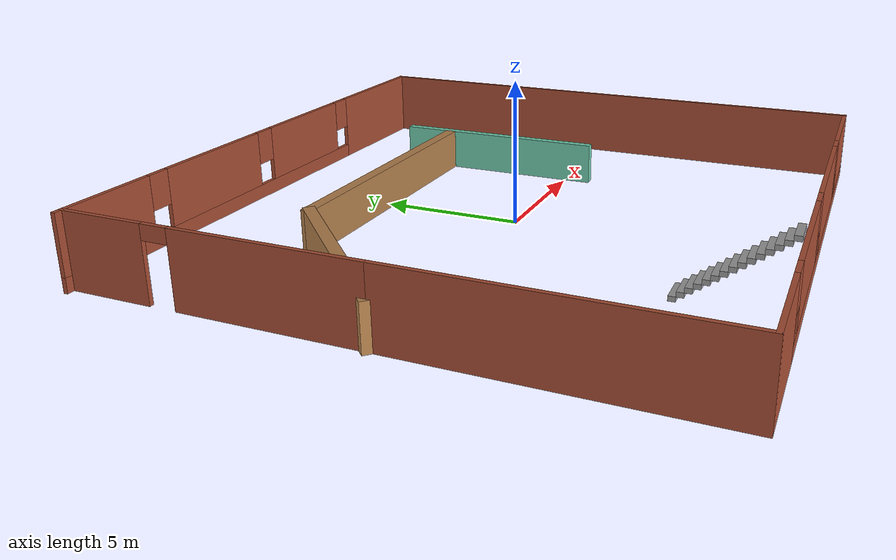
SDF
<?xml version='1.0'?>
<sdf version='1.6'>
  <model name='my_house'>
    <pose frame=''>-0.199999 -0.075 0 0 -0 0</pose>
    <link name='Stairs_1'>
      <visual name='Stairs_1_Visual_0'>
        <pose frame=''>-3.52265 -6.42087 0.083333 0 -0 0</pose>
        <geometry>
          <box>
            <size>1 0.233333 0.166667</size>
          </box>
        </geometry>
        <material>
          <script>
            <uri>file://media/materials/scripts/gazebo.material</uri>
            <name>Gazebo/Grey</name>
          </script>
          <ambient>1 1 1 1</ambient>
        </material>
        <meta>
          <layer>0</layer>
        </meta>
      </visual>
      <collision name='Stairs_1_Collision_0'>
        <geometry>
          <box>
            <size>1 0.233333 0.166667</size>
          </box>
        </geometry>
        <pose frame=''>-3.52265 -6.42087 0.083333 0 -0 0</pose>
      </collision>
      <visual name='Stairs_1_Visual_1'>
        <pose frame=''>-3.52265 -6.6542 0.25 0 -0 0</pose>
        <geometry>
          <box>
            <size>1 0.233333 0.166667</size>
          </box>
        </geometry>
        <material>
          <script>
            <uri>file://media/materials/scripts/gazebo.material</uri>
            <name>Gazebo/Grey</name>
          </script>
          <ambient>1 1 1 1</ambient>
        </material>
        <meta>
          <layer>0</layer>
        </meta>
      </visual>
      <collision name='Stairs_1_Collision_1'>
        <geometry>
          <box>
            <size>1 0.233333 0.166667</size>
          </box>
        </geometry>
        <pose frame=''>-3.52265 -6.6542 0.25 0 -0 0</pose>
      </collision>
      <visual name='Stairs_1_Visual_2'>
        <pose frame=''>-3.52265 -6.88753 0.416667 0 -0 0</pose>
        <geometry>
          <box>
            <size>1 0.233333 0.166667</size>
          </box>
        </geometry>
        <material>
          <script>
            <uri>file://media/materials/scripts/gazebo.material</uri>
            <name>Gazebo/Grey</name>
          </script>
          <ambient>1 1 1 1</ambient>
        </material>
        <meta>
          <layer>0</layer>
        </meta>
      </visual>
      <collision name='Stairs_1_Collision_2'>
        <geometry>
          <box>
            <size>1 0.233333 0.166667</size>
          </box>
        </geometry>
        <pose frame=''>-3.52265 -6.88753 0.416667 0 -0 0</pose>
      </collision>
      <visual name='Stairs_1_Visual_3'>
        <pose frame=''>-3.52265 -7.12087 0.583333 0 -0 0</pose>
        <geometry>
          <box>
            <size>1 0.233333 0.166667</size>
          </box>
        </geometry>
        <material>
          <script>
            <uri>file://media/materials/scripts/gazebo.material</uri>
            <name>Gazebo/Grey</name>
          </script>
          <ambient>1 1 1 1</ambient>
        </material>
        <meta>
          <layer>0</layer>
        </meta>
      </visual>
      <collision name='Stairs_1_Collision_3'>
        <geometry>
          <box>
            <size>1 0.233333 0.166667</size>
          </box>
        </geometry>
        <pose frame=''>-3.52265 -7.12087 0.583333 0 -0 0</pose>
      </collision>
      <visual name='Stairs_1_Visual_4'>
        <pose frame=''>-3.52265 -7.3542 0.75 0 -0 0</pose>
        <geometry>
          <box>
            <size>1 0.233333 0.166667</size>
          </box>
        </geometry>
        <material>
          <script>
            <uri>file://media/materials/scripts/gazebo.material</uri>
            <name>Gazebo/Grey</name>
          </script>
          <ambient>1 1 1 1</ambient>
        </material>
        <meta>
          <layer>0</layer>
        </meta>
      </visual>
      <collision name='Stairs_1_Collision_4'>
        <geometry>
          <box>
            <size>1 0.233333 0.166667</size>
          </box>
        </geometry>
        <pose frame=''>-3.52265 -7.3542 0.75 0 -0 0</pose>
      </collision>
      <visual name='Stairs_1_Visual_5'>
        <pose frame=''>-3.52265 -7.58753 0.916667 0 -0 0</pose>
        <geometry>
          <box>
            <size>1 0.233333 0.166667</size>
          </box>
        </geometry>
        <material>
          <script>
            <uri>file://media/materials/scripts/gazebo.material</uri>
            <name>Gazebo/Grey</name>
          </script>
          <ambient>1 1 1 1</ambient>
        </material>
        <meta>
          <layer>0</layer>
        </meta>
      </visual>
      <collision name='Stairs_1_Collision_5'>
        <geometry>
          <box>
            <size>1 0.233333 0.166667</size>
          </box>
        </geometry>
        <pose frame=''>-3.52265 -7.58753 0.916667 0 -0 0</pose>
      </collision>
      <visual name='Stairs_1_Visual_6'>
        <pose frame=''>-3.52265 -7.82087 1.08333 0 -0 0</pose>
        <geometry>
          <box>
            <size>1 0.233333 0.166667</size>
          </box>
        </geometry>
        <material>
          <script>
            <uri>file://media/materials/scripts/gazebo.material</uri>
            <name>Gazebo/Grey</name>
          </script>
          <ambient>1 1 1 1</ambient>
        </material>
        <meta>
          <layer>0</layer>
        </meta>
      </visual>
      <collision name='Stairs_1_Collision_6'>
        <geometry>
          <box>
            <size>1 0.233333 0.166667</size>
          </box>
        </geometry>
        <pose frame=''>-3.52265 -7.82087 1.08333 0 -0 0</pose>
      </collision>
      <visual name='Stairs_1_Visual_7'>
        <pose frame=''>-3.52265 -8.0542 1.25 0 -0 0</pose>
        <geometry>
          <box>
            <size>1 0.233333 0.166667</size>
          </box>
        </geometry>
        <material>
          <script>
            <uri>file://media/materials/scripts/gazebo.material</uri>
            <name>Gazebo/Grey</name>
          </script>
          <ambient>1 1 1 1</ambient>
        </material>
        <meta>
          <layer>0</layer>
        </meta>
      </visual>
      <collision name='Stairs_1_Collision_7'>
        <geometry>
          <box>
            <size>1 0.233333 0.166667</size>
          </box>
        </geometry>
        <pose frame=''>-3.52265 -8.0542 1.25 0 -0 0</pose>
      </collision>
      <visual name='Stairs_1_Visual_8'>
        <pose frame=''>-3.52265 -8.28753 1.41667 0 -0 0</pose>
        <geometry>
          <box>
            <size>1 0.233333 0.166667</size>
          </box>
        </geometry>
        <material>
          <script>
            <uri>file://media/materials/scripts/gazebo.material</uri>
            <name>Gazebo/Grey</name>
          </script>
          <ambient>1 1 1 1</ambient>
        </material>
        <meta>
          <layer>0</layer>
        </meta>
      </visual>
      <collision name='Stairs_1_Collision_8'>
        <geometry>
          <box>
            <size>1 0.233333 0.166667</size>
          </box>
        </geometry>
        <pose frame=''>-3.52265 -8.28753 1.41667 0 -0 0</pose>
      </collision>
      <visual name='Stairs_1_Visual_9'>
        <pose frame=''>-3.52265 -8.52087 1.58333 0 -0 0</pose>
        <geometry>
          <box>
            <size>1 0.233333 0.166667</size>
          </box>
        </geometry>
        <material>
          <script>
            <uri>file://media/materials/scripts/gazebo.material</uri>
            <name>Gazebo/Grey</name>
          </script>
          <ambient>1 1 1 1</ambient>
        </material>
        <meta>
          <layer>0</layer>
        </meta>
      </visual>
      <collision name='Stairs_1_Collision_9'>
        <geometry>
          <box>
            <size>1 0.233333 0.166667</size>
          </box>
        </geometry>
        <pose frame=''>-3.52265 -8.52087 1.58333 0 -0 0</pose>
      </collision>
      <visual name='Stairs_1_Visual_10'>
        <pose frame=''>-3.52265 -8.7542 1.75 0 -0 0</pose>
        <geometry>
          <box>
            <size>1 0.233333 0.166667</size>
          </box>
        </geometry>
        <material>
          <script>
            <uri>file://media/materials/scripts/gazebo.material</uri>
            <name>Gazebo/Grey</name>
          </script>
          <ambient>1 1 1 1</ambient>
        </material>
        <meta>
          <layer>0</layer>
        </meta>
      </visual>
      <collision name='Stairs_1_Collision_10'>
        <geometry>
          <box>
            <size>1 0.233333 0.166667</size>
          </box>
        </geometry>
        <pose frame=''>-3.52265 -8.7542 1.75 0 -0 0</pose>
      </collision>
      <visual name='Stairs_1_Visual_11'>
        <pose frame=''>-3.52265 -8.98753 1.91667 0 -0 0</pose>
        <geometry>
          <box>
            <size>1 0.233333 0.166667</size>
          </box>
        </geometry>
        <material>
          <script>
            <uri>file://media/materials/scripts/gazebo.material</uri>
            <name>Gazebo/Grey</name>
          </script>
          <ambient>1 1 1 1</ambient>
        </material>
        <meta>
          <layer>0</layer>
        </meta>
      </visual>
      <collision name='Stairs_1_Collision_11'>
        <geometry>
          <box>
            <size>1 0.233333 0.166667</size>
          </box>
        </geometry>
        <pose frame=''>-3.52265 -8.98753 1.91667 0 -0 0</pose>
      </collision>
      <visual name='Stairs_1_Visual_12'>
        <pose frame=''>-3.52265 -9.22086 2.08333 0 -0 0</pose>
        <geometry>
          <box>
            <size>1 0.233333 0.166667</size>
          </box>
        </geometry>
        <material>
          <script>
            <uri>file://media/materials/scripts/gazebo.material</uri>
            <name>Gazebo/Grey</name>
          </script>
          <ambient>1 1 1 1</ambient>
        </material>
        <meta>
          <layer>0</layer>
        </meta>
      </visual>
      <collision name='Stairs_1_Collision_12'>
        <geometry>
          <box>
            <size>1 0.233333 0.166667</size>
          </box>
        </geometry>
        <pose frame=''>-3.52265 -9.22086 2.08333 0 -0 0</pose>
      </collision>
      <visual name='Stairs_1_Visual_13'>
        <pose frame=''>-3.52265 -9.4542 2.25 0 -0 0</pose>
        <geometry>
          <box>
            <size>1 0.233333 0.166667</size>
          </box>
        </geometry>
        <material>
          <script>
            <uri>file://media/materials/scripts/gazebo.material</uri>
            <name>Gazebo/Grey</name>
          </script>
          <ambient>1 1 1 1</ambient>
        </material>
        <meta>
          <layer>0</layer>
        </meta>
      </visual>
      <collision name='Stairs_1_Collision_13'>
        <geometry>
          <box>
            <size>1 0.233333 0.166667</size>
          </box>
        </geometry>
        <pose frame=''>-3.52265 -9.4542 2.25 0 -0 0</pose>
      </collision>
      <visual name='Stairs_1_Visual_14'>
        <pose frame=''>-3.52265 -9.68753 2.41667 0 -0 0</pose>
        <geometry>
          <box>
            <size>1 0.233333 0.166667</size>
          </box>
        </geometry>
        <material>
          <script>
            <uri>file://media/materials/scripts/gazebo.material</uri>
            <name>Gazebo/Grey</name>
          </script>
          <ambient>1 1 1 1</ambient>
        </material>
        <meta>
          <layer>0</layer>
        </meta>
      </visual>
      <collision name='Stairs_1_Collision_14'>
        <geometry>
          <box>
            <size>1 0.233333 0.166667</size>
          </box>
        </geometry>
        <pose frame=''>-3.52265 -9.68753 2.41667 0 -0 0</pose>
      </collision>
    </link>
    <link name='Wall_14'>
      <collision name='Wall_14_Collision'>
        <geometry>
          <box>
            <size>20 0.15 2.5</size>
          </box>
        </geometry>
        <pose frame=''>0 0 1.25 0 -0 0</pose>
      </collision>
      <visual name='Wall_14_Visual'>
        <pose frame=''>0 0 1.25 0 -0 0</pose>
        <geometry>
          <box>
            <size>20 0.15 2.5</size>
          </box>
        </geometry>
        <material>
          <script>
            <uri>file://media/materials/scripts/gazebo.material</uri>
            <name>Gazebo/Bricks</name>
          </script>
          <ambient>1 1 1 1</ambient>
        </material>
        <meta>
          <layer>0</layer>
        </meta>
      </visual>
      <pose frame=''>10.05 0 0 0 -0 1.5708</pose>
    </link>
    <link name='Wall_15'>
      <pose frame=''>-1e-06 9.925 0 0 -0 3.14159</pose>
      <visual name='Wall_15_Visual_0'>
        <pose frame=''>-7.59411 0 1.25 0 -0 0</pose>
        <geometry>
          <box>
            <size>5.06177 0.15 2.5</size>
          </box>
        </geometry>
        <material>
          <script>
            <uri>file://media/materials/scripts/gazebo.material</uri>
            <name>Gazebo/Bricks</name>
          </script>
          <ambient>1 1 1 1</ambient>
        </material>
        <meta>
          <layer>0</layer>
        </meta>
      </visual>
      <collision name='Wall_15_Collision_0'>
        <geometry>
          <box>
            <size>5.06177 0.15 2.5</size>
          </box>
        </geometry>
        <pose frame=''>-7.59411 0 1.25 0 -0 0</pose>
      </collision>
      <visual name='Wall_15_Visual_1'>
        <pose frame=''>2.53089 0 0.25 0 -0 0</pose>
        <geometry>
          <box>
            <size>15.1882 0.15 0.5</size>
          </box>
        </geometry>
        <material>
          <script>
            <uri>file://media/materials/scripts/gazebo.material</uri>
            <name>Gazebo/Bricks</name>
          </script>
          <ambient>1 1 1 1</ambient>
        </material>
        <meta>
          <layer>0</layer>
        </meta>
      </visual>
      <collision name='Wall_15_Collision_1'>
        <geometry>
          <box>
            <size>15.1882 0.15 0.5</size>
          </box>
        </geometry>
        <pose frame=''>2.53089 0 0.25 0 -0 0</pose>
      </collision>
      <visual name='Wall_15_Visual_2'>
        <pose frame=''>-2.06836 0 1.5 0 -0 0</pose>
        <geometry>
          <box>
            <size>4.38974 0.15 2</size>
          </box>
        </geometry>
        <material>
          <script>
            <uri>file://media/materials/scripts/gazebo.material</uri>
            <name>Gazebo/Bricks</name>
          </script>
          <ambient>1 1 1 1</ambient>
        </material>
        <meta>
          <layer>0</layer>
        </meta>
      </visual>
      <collision name='Wall_15_Collision_2'>
        <geometry>
          <box>
            <size>4.38974 0.15 2</size>
          </box>
        </geometry>
        <pose frame=''>-2.06836 0 1.5 0 -0 0</pose>
      </collision>
      <visual name='Wall_15_Visual_3'>
        <pose frame=''>3.28189 0 1.5 0 -0 0</pose>
        <geometry>
          <box>
            <size>4.71076 0.15 2</size>
          </box>
        </geometry>
        <material>
          <script>
            <uri>file://media/materials/scripts/gazebo.material</uri>
            <name>Gazebo/Bricks</name>
          </script>
          <ambient>1 1 1 1</ambient>
        </material>
        <meta>
          <layer>0</layer>
        </meta>
      </visual>
      <collision name='Wall_15_Collision_3'>
        <geometry>
          <box>
            <size>4.71076 0.15 2</size>
          </box>
        </geometry>
        <pose frame=''>3.28189 0 1.5 0 -0 0</pose>
      </collision>
      <visual name='Wall_15_Visual_4'>
        <pose frame=''>8.28114 0 1.5 0 -0 0</pose>
        <geometry>
          <box>
            <size>3.68773 0.15 2</size>
          </box>
        </geometry>
        <material>
          <script>
            <uri>file://media/materials/scripts/gazebo.material</uri>
            <name>Gazebo/Bricks</name>
          </script>
          <ambient>1 1 1 1</ambient>
        </material>
        <meta>
          <layer>0</layer>
        </meta>
      </visual>
      <collision name='Wall_15_Collision_4'>
        <geometry>
          <box>
            <size>3.68773 0.15 2</size>
          </box>
        </geometry>
        <pose frame=''>8.28114 0 1.5 0 -0 0</pose>
      </collision>
      <visual name='Wall_15_Visual_5'>
        <pose frame=''>-4.66323 0 1.9 0 -0 0</pose>
        <geometry>
          <box>
            <size>0.8 0.15 1.2</size>
          </box>
        </geometry>
        <material>
          <script>
            <uri>file://media/materials/scripts/gazebo.material</uri>
            <name>Gazebo/Bricks</name>
          </script>
          <ambient>1 1 1 1</ambient>
        </material>
        <meta>
          <layer>0</layer>
        </meta>
      </visual>
      <collision name='Wall_15_Collision_5'>
        <geometry>
          <box>
            <size>0.8 0.15 1.2</size>
          </box>
        </geometry>
        <pose frame=''>-4.66323 0 1.9 0 -0 0</pose>
      </collision>
      <visual name='Wall_15_Visual_6'>
        <pose frame=''>0.526515 0 1.9 0 -0 0</pose>
        <geometry>
          <box>
            <size>0.8 0.15 1.2</size>
          </box>
        </geometry>
        <material>
          <script>
            <uri>file://media/materials/scripts/gazebo.material</uri>
            <name>Gazebo/Bricks</name>
          </script>
          <ambient>1 1 1 1</ambient>
        </material>
        <meta>
          <layer>0</layer>
        </meta>
      </visual>
      <collision name='Wall_15_Collision_6'>
        <geometry>
          <box>
            <size>0.8 0.15 1.2</size>
          </box>
        </geometry>
        <pose frame=''>0.526515 0 1.9 0 -0 0</pose>
      </collision>
      <visual name='Wall_15_Visual_7'>
        <pose frame=''>6.03727 0 1.9 0 -0 0</pose>
        <geometry>
          <box>
            <size>0.8 0.15 1.2</size>
          </box>
        </geometry>
        <material>
          <script>
            <uri>file://media/materials/scripts/gazebo.material</uri>
            <name>Gazebo/Bricks</name>
          </script>
          <ambient>1 1 1 1</ambient>
        </material>
        <meta>
          <layer>0</layer>
        </meta>
      </visual>
      <collision name='Wall_15_Collision_7'>
        <geometry>
          <box>
            <size>0.8 0.15 1.2</size>
          </box>
        </geometry>
        <pose frame=''>6.03727 0 1.9 0 -0 0</pose>
      </collision>
    </link>
    <link name='Wall_17'>
      <pose frame=''>-9.8 5 0 0 -0 1.5708</pose>
      <visual name='Wall_17_Visual_0'>
        <pose frame=''>-1.92226 0 1.25 0 -0 0</pose>
        <geometry>
          <box>
            <size>6.15549 0.15 2.5</size>
          </box>
        </geometry>
        <material>
          <script>
            <uri>file://media/materials/scripts/gazebo.material</uri>
            <name>Gazebo/Bricks</name>
          </script>
          <ambient>1 1 1 1</ambient>
        </material>
        <meta>
          <layer>0</layer>
        </meta>
      </visual>
      <collision name='Wall_17_Collision_0'>
        <geometry>
          <box>
            <size>6.15549 0.15 2.5</size>
          </box>
        </geometry>
        <pose frame=''>-1.92226 0 1.25 0 -0 0</pose>
      </collision>
      <visual name='Wall_17_Visual_1'>
        <pose frame=''>3.52774 0 1.25 0 -0 0</pose>
        <geometry>
          <box>
            <size>2.94451 0.15 2.5</size>
          </box>
        </geometry>
        <material>
          <script>
            <uri>file://media/materials/scripts/gazebo.material</uri>
            <name>Gazebo/Bricks</name>
          </script>
          <ambient>1 1 1 1</ambient>
        </material>
        <meta>
          <layer>0</layer>
        </meta>
      </visual>
      <collision name='Wall_17_Collision_1'>
        <geometry>
          <box>
            <size>2.94451 0.15 2.5</size>
          </box>
        </geometry>
        <pose frame=''>3.52774 0 1.25 0 -0 0</pose>
      </collision>
      <visual name='Wall_17_Visual_2'>
        <pose frame=''>1.60549 0 2.25 0 -0 0</pose>
        <geometry>
          <box>
            <size>0.9 0.15 0.5</size>
          </box>
        </geometry>
        <material>
          <script>
            <uri>file://media/materials/scripts/gazebo.material</uri>
            <name>Gazebo/Bricks</name>
          </script>
          <ambient>1 1 1 1</ambient>
        </material>
        <meta>
          <layer>0</layer>
        </meta>
      </visual>
      <collision name='Wall_17_Collision_2'>
        <geometry>
          <box>
            <size>0.9 0.15 0.5</size>
          </box>
        </geometry>
        <pose frame=''>1.60549 0 2.25 0 -0 0</pose>
      </collision>
    </link>
    <link name='Wall_21'>
      <collision name='Wall_21_Collision'>
        <geometry>
          <box>
            <size>7.9 0.3 1.5</size>
          </box>
        </geometry>
        <pose frame=''>0 0 0.75 0 -0 0</pose>
      </collision>
      <visual name='Wall_21_Visual'>
        <pose frame=''>0 0 0.75 0 -0 0</pose>
        <geometry>
          <box>
            <size>7.9 0.3 1.5</size>
          </box>
        </geometry>
        <material>
          <script>
            <uri>file://media/materials/scripts/gazebo.material</uri>
            <name>Gazebo/Grey</name>
          </script>
          <ambient>0.435294 0.796078 0.67451 1</ambient>
        </material>
        <meta>
          <layer>0</layer>
        </meta>
      </visual>
      <pose frame=''>5.522 3.051 0 0 0 -1.5708</pose>
    </link>
    <link name='Wall_3'>
      <collision name='Wall_3_Collision'>
        <geometry>
          <box>
            <size>10.4 0.4 1.5</size>
          </box>
        </geometry>
        <pose frame=''>0 0 0.75 0 -0 0</pose>
      </collision>
      <visual name='Wall_3_Visual'>
        <pose frame=''>0 0 0.75 0 -0 0</pose>
        <geometry>
          <box>
            <size>10.4 0.4 1.5</size>
          </box>
        </geometry>
        <material>
          <script>
            <uri>file://media/materials/scripts/gazebo.material</uri>
            <name>Gazebo/Wood</name>
          </script>
          <ambient>1 1 1 1</ambient>
        </material>
        <meta>
          <layer>0</layer>
        </meta>
      </visual>
      <pose frame=''>0.199999 5.075 0 0 -0 3.14159</pose>
    </link>
    <link name='Wall_5'>
      <collision name='Wall_5_Collision'>
        <geometry>
          <box>
            <size>7.47107 0.4 1.5</size>
          </box>
        </geometry>
        <pose frame=''>0 0 0.75 0 -0 0</pose>
      </collision>
      <visual name='Wall_5_Visual'>
        <pose frame=''>0 0 0.75 0 -0 0</pose>
        <geometry>
          <box>
            <size>7.47107 0.4 1.5</size>
          </box>
        </geometry>
        <material>
          <script>
            <uri>file://media/materials/scripts/gazebo.material</uri>
            <name>Gazebo/Wood</name>
          </script>
          <ambient>1 1 1 1</ambient>
        </material>
        <meta>
          <layer>0</layer>
        </meta>
      </visual>
      <pose frame=''>-7.3 2.575 0 0 0 -2.35619</pose>
    </link>
    <link name='Wall_7'>
      <collision name='Wall_7_Collision'>
        <geometry>
          <box>
            <size>10.15 0.15 2.5</size>
          </box>
        </geometry>
        <pose frame=''>0 0 1.25 0 -0 0</pose>
      </collision>
      <visual name='Wall_7_Visual'>
        <pose frame=''>0 0 1.25 0 -0 0</pose>
        <geometry>
          <box>
            <size>10.15 0.15 2.5</size>
          </box>
        </geometry>
        <material>
          <script>
            <uri>file://media/materials/scripts/gazebo.material</uri>
            <name>Gazebo/Bricks</name>
          </script>
          <ambient>1 1 1 1</ambient>
        </material>
        <meta>
          <layer>0</layer>
        </meta>
      </visual>
      <pose frame=''>-9.8 -4.925 0 0 0 -1.5708</pose>
    </link>
    <link name='Wall_9'>
      <pose frame=''>0.124999 -9.925 0 0 -0 0</pose>
      <visual name='Wall_9_Visual_0'>
        <pose frame=''>-8.30789 0 1.25 0 -0 0</pose>
        <geometry>
          <box>
            <size>3.38422 0.15 2.5</size>
          </box>
        </geometry>
        <material>
          <script>
            <uri>file://media/materials/scripts/gazebo.material</uri>
            <name>Gazebo/Bricks</name>
          </script>
          <ambient>1 1 1 1</ambient>
        </material>
        <meta>
          <layer>0</layer>
        </meta>
      </visual>
      <collision name='Wall_9_Collision_0'>
        <geometry>
          <box>
            <size>3.38422 0.15 2.5</size>
          </box>
        </geometry>
        <pose frame=''>-8.30789 0 1.25 0 -0 0</pose>
      </collision>
      <visual name='Wall_9_Visual_1'>
        <pose frame=''>1.69211 0 0.25 0 -0 0</pose>
        <geometry>
          <box>
            <size>16.6158 0.15 0.5</size>
          </box>
        </geometry>
        <material>
          <script>
            <uri>file://media/materials/scripts/gazebo.material</uri>
            <name>Gazebo/Bricks</name>
          </script>
          <ambient>1 1 1 1</ambient>
        </material>
        <meta>
          <layer>0</layer>
        </meta>
      </visual>
      <collision name='Wall_9_Collision_1'>
        <geometry>
          <box>
            <size>16.6158 0.15 0.5</size>
          </box>
        </geometry>
        <pose frame=''>1.69211 0 0.25 0 -0 0</pose>
      </collision>
      <visual name='Wall_9_Visual_2'>
        <pose frame=''>-3.43364 0 1.5 0 -0 0</pose>
        <geometry>
          <box>
            <size>4.76426 0.15 2</size>
          </box>
        </geometry>
        <material>
          <script>
            <uri>file://media/materials/scripts/gazebo.material</uri>
            <name>Gazebo/Bricks</name>
          </script>
          <ambient>1 1 1 1</ambient>
        </material>
        <meta>
          <layer>0</layer>
        </meta>
      </visual>
      <collision name='Wall_9_Collision_2'>
        <geometry>
          <box>
            <size>4.76426 0.15 2</size>
          </box>
        </geometry>
        <pose frame=''>-3.43364 0 1.5 0 -0 0</pose>
      </collision>
      <visual name='Wall_9_Visual_3'>
        <pose frame=''>2.45163 0 1.5 0 -0 0</pose>
        <geometry>
          <box>
            <size>5.40629 0.15 2</size>
          </box>
        </geometry>
        <material>
          <script>
            <uri>file://media/materials/scripts/gazebo.material</uri>
            <name>Gazebo/Bricks</name>
          </script>
          <ambient>1 1 1 1</ambient>
        </material>
        <meta>
          <layer>0</layer>
        </meta>
      </visual>
      <collision name='Wall_9_Collision_3'>
        <geometry>
          <box>
            <size>5.40629 0.15 2</size>
          </box>
        </geometry>
        <pose frame=''>2.45163 0 1.5 0 -0 0</pose>
      </collision>
      <visual name='Wall_9_Visual_4'>
        <pose frame=''>7.97739 0 1.5 0 -0 0</pose>
        <geometry>
          <box>
            <size>4.04523 0.15 2</size>
          </box>
        </geometry>
        <material>
          <script>
            <uri>file://media/materials/scripts/gazebo.material</uri>
            <name>Gazebo/Bricks</name>
          </script>
          <ambient>1 1 1 1</ambient>
        </material>
        <meta>
          <layer>0</layer>
        </meta>
      </visual>
      <collision name='Wall_9_Collision_4'>
        <geometry>
          <box>
            <size>4.04523 0.15 2</size>
          </box>
        </geometry>
        <pose frame=''>7.97739 0 1.5 0 -0 0</pose>
      </collision>
      <visual name='Wall_9_Visual_5'>
        <pose frame=''>-6.21577 0 1.9 0 -0 0</pose>
        <geometry>
          <box>
            <size>0.8 0.15 1.2</size>
          </box>
        </geometry>
        <material>
          <script>
            <uri>file://media/materials/scripts/gazebo.material</uri>
            <name>Gazebo/Bricks</name>
          </script>
          <ambient>1 1 1 1</ambient>
        </material>
        <meta>
          <layer>0</layer>
        </meta>
      </visual>
      <collision name='Wall_9_Collision_5'>
        <geometry>
          <box>
            <size>0.8 0.15 1.2</size>
          </box>
        </geometry>
        <pose frame=''>-6.21577 0 1.9 0 -0 0</pose>
      </collision>
      <visual name='Wall_9_Visual_6'>
        <pose frame=''>-0.651515 0 1.9 0 -0 0</pose>
        <geometry>
          <box>
            <size>0.8 0.15 1.2</size>
          </box>
        </geometry>
        <material>
          <script>
            <uri>file://media/materials/scripts/gazebo.material</uri>
            <name>Gazebo/Bricks</name>
          </script>
          <ambient>1 1 1 1</ambient>
        </material>
        <meta>
          <layer>0</layer>
        </meta>
      </visual>
      <collision name='Wall_9_Collision_6'>
        <geometry>
          <box>
            <size>0.8 0.15 1.2</size>
          </box>
        </geometry>
        <pose frame=''>-0.651515 0 1.9 0 -0 0</pose>
      </collision>
      <visual name='Wall_9_Visual_7'>
        <pose frame=''>5.55478 0 1.9 0 -0 0</pose>
        <geometry>
          <box>
            <size>0.8 0.15 1.2</size>
          </box>
        </geometry>
        <material>
          <script>
            <uri>file://media/materials/scripts/gazebo.material</uri>
            <name>Gazebo/Bricks</name>
          </script>
          <ambient>1 1 1 1</ambient>
        </material>
        <meta>
          <layer>0</layer>
        </meta>
      </visual>
      <collision name='Wall_9_Collision_7'>
        <geometry>
          <box>
            <size>0.8 0.15 1.2</size>
          </box>
        </geometry>
        <pose frame=''>5.55478 0 1.9 0 -0 0</pose>
      </collision>
    </link>
    <static>1</static>
  </model>
</sdf>
